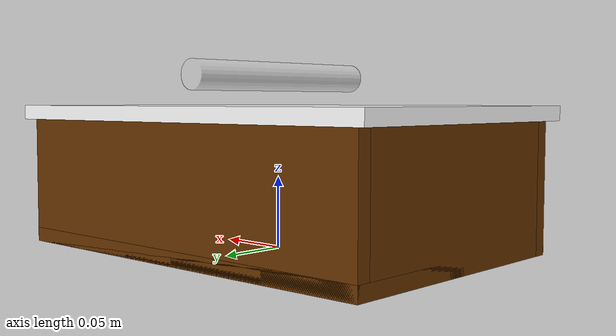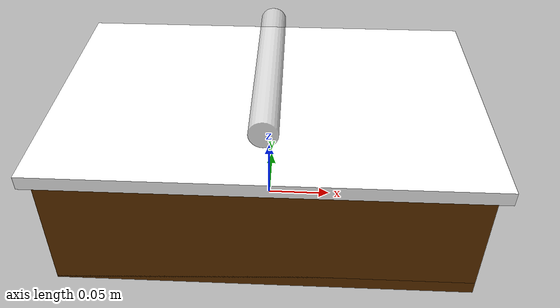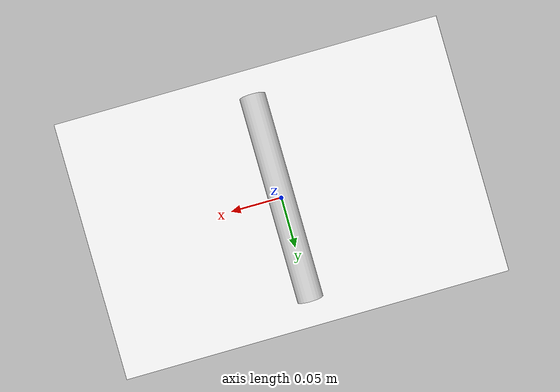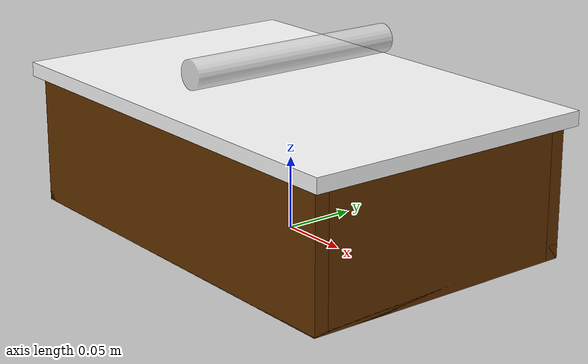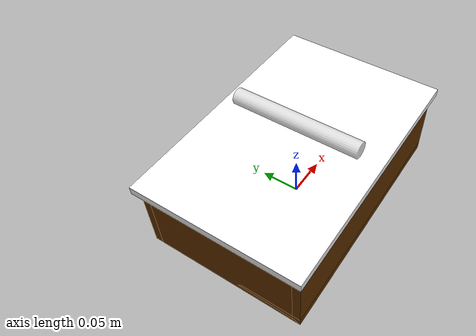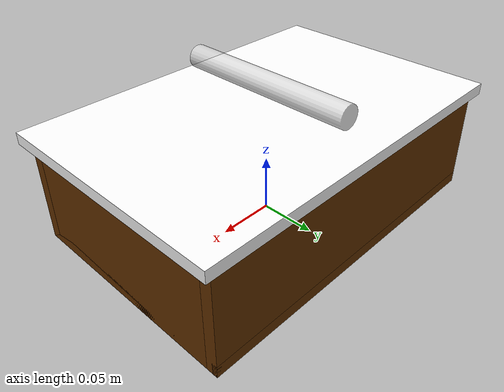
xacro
<?xml version="1.0"?>
<robot xmlns:xacro="http://www.ros.org/wiki/xacro" name="container_no_lid">

<xacro:include filename="container_common.xacro"/>

<link name="base_link">
  <inertial>
    <origin rpy="0 0 0" xyz="0 0 0"/>
    <mass value="0.0"/>
    <inertia ixx="1" ixy="0" ixz="0" iyy="1" iyz="0" izz="1"/>
  </inertial>
</link>

<xacro:corpus prefix="frame" width="${total_width}" depth="${total_depth}" height="${total_height-wall_thickness}" wall_thickness="${wall_thickness}" color="dark_brown"/>
<joint name="frame_joint" type="fixed">
  <origin xyz="0 0 ${wall_thickness/2}" rpy="0 0 0"/>
  <parent link="base_link"/>
  <child link="frame_bottom_plane"/>
</joint>

<xacro:plane prefix="lid" width="${total_width*1.05}" depth="${total_depth*1.05}" thickness="${wall_thickness}" color="white"/>
<joint name="lid_joint" type="prismatic">
  <origin xyz="0 0 ${total_height-wall_thickness}" rpy="0 0 0"/>
  <parent link="frame_bottom_plane"/>
  <child link="lid_plane"/>
  <axis xyz="0 0 1"/>
  <dynamics damping="8.0"/>
  <limit lower="0.0" upper="${0.9*total_width}" effort="10.0" velocity="1.5"/>
</joint>

<xacro:handle length="${total_depth*0.8}"/>
<joint name="handle_joint" type="fixed">
  <origin xyz="0 0 ${wall_thickness/2+0.02}" rpy="${pi/2} 0 0"/>
  <parent link="lid_plane"/>
  <child link="handle"/>
</joint>

</robot>

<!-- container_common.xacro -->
<robot xmlns:xacro="http://www.ros.org/wiki/xacro" name="container_common">

<xacro:property name="wall_thickness" value="0.01"/>
<xacro:property name="total_height" value="0.1"/>
<xacro:property name="total_width" value="0.3"/>
<xacro:property name="total_depth" value="0.2"/>
<xacro:property name="lid_spacing" value="0.01"/>

<material name="white">
  <color rgba="1 1 1 1"/>
</material>
<material name="dark_brown">
  <color rgba="0.4 0.2 0.0 1"/>
</material>
<material name="light_brown">
  <color rgba="0.6 0.29 0.0 1"/>
</material>
<material name="silver">
  <color rgba="0.87 0.87 0.87 0.8"/>
</material>

<xacro:macro name="ori_geo" params="width depth height">
  <origin rpy="0 0 0" xyz="0 0 0"/>
  <geometry>
    <box size="${width} ${depth} ${height}"/>
  </geometry>
</xacro:macro>

<xacro:macro name="plane" params="prefix width depth thickness color">
  <link name="${prefix}_plane">
    <contact>
      <lateral_friction value="1.0"/>
    </contact>
    <inertial>
      <origin rpy="0 0 0" xyz="0 0 0"/>
       <mass value="0.02"/>
       <inertia ixx="1" ixy="0" ixz="0" iyy="1" iyz="0" izz="1"/>
    </inertial>
    <visual>
      <xacro:ori_geo width="${width}" depth="${depth}" height="${thickness}"/>
      <material name="${color}"/>
    </visual>
    <collision>
      <xacro:ori_geo width="${width}" depth="${depth}" height="${thickness}"/>
    </collision>
  </link>
</xacro:macro>

<xacro:macro name="corpus" params="prefix width depth height wall_thickness color">
  <xacro:plane prefix="${prefix}_bottom" width="${width}" depth="${depth}" thickness="${wall_thickness}" color="${color}"/>

  <xacro:plane prefix="${prefix}_back" width="${width}" depth="${height}" thickness="${wall_thickness}" color="${color}"/>
  <joint name="${prefix}_back_joint" type="fixed">
    <origin xyz="0 ${depth/2-wall_thickness/2} ${height/2-wall_thickness/2}" rpy="${pi/2} 0 0"/>
    <parent link="${prefix}_bottom_plane"/>
    <child link="${prefix}_back_plane"/>
  </joint>

  <xacro:plane prefix="${prefix}_left" width="${depth-2*wall_thickness}" depth="${height}" thickness="${wall_thickness}" color="${color}"/>
  <joint name="${prefix}_left_joint" type="fixed">
    <origin xyz="-${width/2-wall_thickness/2} 0 ${height/2-wall_thickness/2}" rpy="${pi/2} 0 ${pi/2}"/>
    <parent link="${prefix}_bottom_plane"/>
    <child link="${prefix}_left_plane"/>
  </joint>

  <xacro:plane prefix="${prefix}_right" width="${depth-2*wall_thickness}" depth="${height}" thickness="${wall_thickness}" color="${color}"/>
  <joint name="${prefix}_right_joint" type="fixed">
    <origin xyz="${width/2-wall_thickness/2} 0 ${height/2-wall_thickness/2}" rpy="${pi/2} 0 ${pi/2}"/>
    <parent link="${prefix}_bottom_plane"/>
    <child link="${prefix}_right_plane"/>
  </joint>

  <xacro:plane prefix="${prefix}_front" width="${width}" depth="${height}" thickness="${wall_thickness}" color="${color}"/>
  <joint name="${prefix}_front_joint" type="fixed">
    <origin xyz="0 -${depth/2-wall_thickness/2} ${height/2-wall_thickness/2}" rpy="${pi/2} 0 0"/>
    <parent link="${prefix}_bottom_plane"/>
    <child link="${prefix}_front_plane"/>
  </joint>
</xacro:macro>

<xacro:macro name="handle" params="length">
<link name="handle">
  <inertial>
    <origin rpy="0 0 0" xyz="0 0 0"/>
    <mass value="0.02"/>
    <inertia ixx="1" ixy="0" ixz="0" iyy="1" iyz="0" izz="1"/>
  </inertial>
  <collision>
    <origin rpy="0 0 0" xyz="0 0 0"/>
    <geometry>
      <cylinder radius="0.01" length="${length}"/>
    </geometry>
  </collision>
  <visual>
    <origin rpy="0 0 0" xyz="0 0 0"/>
    <geometry>
      <cylinder radius="0.01" length="${length}"/>
    </geometry>
    <material name="silver"/>
  </visual>
</link>
</xacro:macro>

</robot>
